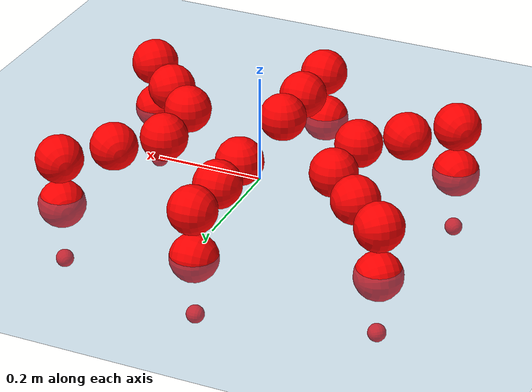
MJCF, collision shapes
<mujoco model="Golem">
  <compiler angle="radian" assetdir="assets" balanceinertia="true" inertiafromgeom="false"/>

  <option timestep="0.005" density="1.2" viscosity="2e-05"/>

  <size nkey="1"/>

  <visual>
    <quality shadowsize="8192"/>
    <map shadowclip="0.5"/>
  </visual>

  <default>
    <default class="/">
      <joint armature="0.01" damping="0.01" frictionloss="0.01"/>
      <geom contype="0" conaffinity="0" group="1" solref="-1000 -80"/>
      <site size="0.01 0.005 0.005" group="5"/>
      <general forcelimited="true" biastype="affine" gainprm="25" biasprm="0 -25 -0.5"/>
      <default class="visual">
        <geom type="mesh" group="2"/>
      </default>
      <default class="collision">
        <geom group="3"/>
      </default>
      <default class="foot">
        <geom size="0.01 0 0" condim="6" group="4" priority="1" solimp="0.015 1 0.01"/>
      </default>
      <default class="reward_collision_sphere">
        <geom group="5" rgba="1 0 0 1"/>
      </default>
    </default>
  </default>

  <asset>
    <texture type="skybox" colorspace="auto" name="//unnamed_texture_0" builtin="gradient" rgb1="0.95 0.95 0.95" rgb2="0.95 0.95 0.95" width="100" height="600"/>
    <texture type="2d" colorspace="auto" name="texplane" builtin="checker" rgb1="0.345 0.575 0.748" rgb2="0.345 0.575 0.748" markrgb="1 1 1" width="512" height="512"/>
    <material name="MatPlane" class="/" texture="texplane" texuniform="true" texrepeat="2 2" specular="0.9"/>
    <mesh name="body" class="/" file="body.stl" scale="0.001 0.001 0.001"/>
    <mesh name="coxa" class="/" file="coxa.stl" scale="0.001 0.001 0.001"/>
    <mesh name="femur" class="/" file="femur.stl" scale="0.001 0.001 0.001"/>
    <mesh name="tibia" class="/" file="tibia.stl" scale="0.001 0.001 0.001"/>
    <mesh name="tarsus" class="/" file="tarsus.stl" scale="0.001 0.001 0.001"/>
  </asset>

  <worldbody>
    <geom name="floor" class="/" size="100 100 0.125" type="plane" group="0" material="MatPlane"/>
    <light name="toplight_shadow" class="/" pos="0 0 5" dir="0.0990148 0.0990148 -0.990148" type="directional" ambient="0.04 0.04 0.04" diffuse="0.55 0.55 0.55" specular="0.12 0.12 0.12"/>
    <light name="toplight_fill" class="/" pos="0 0 5" dir="0.0990148 0.0990148 -0.990148" type="directional" castshadow="false" ambient="0.04 0.04 0.04" diffuse="0.3 0.3 0.3" specular="0.08 0.08 0.08"/>
    <body name="trunk" pos="-5.25002e-05 -0.00226526 -0.000385319" quat="1 0.000386036 -0.000415569 -0.000133752">
      <inertial pos="0.0024497 -0.00233669 -0.00179861" quat="0.999923 -0.0118853 0.000829684 -0.00336055" mass="4.85385" diaginertia="0.0126181 0.00680794 0.0351157"/>
      <joint name="//unnamed_joint_0" type="free"/>
      <geom name="//unnamed_geom_1" class="/" pos="0 0 0.0822961" quat="1 0 0 0" type="mesh" rgba="0.9 0.9 0.9 1" mesh="body"/>
      <site name="imu" class="/" pos="0.12468 -0.00739966 0.108426" size="0.0109267"/>
      <camera name="track" class="/" pos="0 -1.86717 0" quat="0.707107 0.707107 0 0" mode="trackcom"/>
      <camera name="ego_camera" class="/" pos="0.13761 0 0.128588" quat="-0.5 -0.5 0.5 0.5"/>
      <body name="coxa_RR" pos="-0.188423 -0.0783977 0.0812404" quat="0.381734 -0.00113535 0.00155651 -0.92427">
        <inertial pos="-0.000624454 0.00248067 -0.000986458" quat="0.999951 -0.00739383 -0.00490499 0.00430222" mass="0.246447" diaginertia="0.0124487 0.00665455 0.0319711"/>
        <joint name="coxa_joint_RR" class="/" pos="0 0 0" axis="-0.00455683 0.00564395 -0.999974" stiffness="0.00762587" range="-3.09836 3.08798" armature="0.0122974" damping="0" frictionloss="0.0121792"/>
        <geom name="//unnamed_geom_2" class="/" type="mesh" rgba="0.2 0.2 0.2 1" mesh="coxa"/>
        <geom name="//unnamed_geom_3" class="reward_collision_sphere" size="0.0437067" pos="-0.0317562 0 0"/>
        <body name="femur_RR" pos="0.0624564 -0.00146133 -0.00253135" quat="0.500786 -0.499995 0.500495 0.498721">
          <inertial pos="1.55431e-05 -0.00374801 0.00127169" quat="0.999996 0.00149131 -0.00215045 -0.000504628" mass="0.27099" diaginertia="0.0137829 0.00711495 0.0359418"/>
          <joint name="femur_joint_RR" class="/" pos="0 0 0" axis="-0.00675837 -0.00455266 -0.999967" range="-3.09023 3.08971" armature="0.0101006" damping="0.0213062" frictionloss="0.0110869"/>
          <geom name="//unnamed_geom_4" class="/" type="mesh" rgba="0.9 0.9 0.9 1" mesh="femur"/>
          <geom name="//unnamed_geom_5" class="reward_collision_sphere" size="0.0437067"/>
          <body name="tibia_RR" pos="0.000146961 -0.0994232 0.0015311" quat="9.73794e-05 1 8.04514e-05 1.27421e-05">
            <inertial pos="0.00122657 -0.00296944 0.00232475" quat="0.999999 -1.77822e-05 0.0012576 0.000182345" mass="0.261852" diaginertia="0.0132637 0.00716254 0.0347544"/>
            <joint name="tibia_joint_RR" class="/" pos="0 0 0" axis="-0.00273023 0.0122494 0.999921" stiffness="0.00831091" range="-3.19928 3.18655" armature="0.0102756" damping="0.0234209" frictionloss="0.00840712"/>
            <geom name="//unnamed_geom_6" class="/" type="mesh" rgba="0.2 0.2 0.2 1" mesh="tibia"/>
            <geom name="//unnamed_geom_7" class="reward_collision_sphere" size="0.0437067"/>
            <body name="tarsus_RR" pos="0.0925399 -0.000735128 0.00343439" quat="1 -6.38063e-05 -0.000191641 0.000603276">
              <inertial pos="0.0657114 -0.00202029 -0.000108352" quat="0.495923 0.500796 0.497161 0.506058" mass="0.267788" diaginertia="0.0140455 0.00705116 0.0340601"/>
              <joint name="tarsus_joint_RR" class="/" pos="0 0 0" axis="-0.0022118 0.0003499 0.999997" stiffness="0.00533908" range="-3.16261 3.11368" armature="0.00961518" damping="0.00172671" frictionloss="0.0119686"/>
              <geom name="//unnamed_geom_8" class="/" type="mesh" rgba="0.9 0.9 0.9 1" mesh="tarsus"/>
              <geom name="foot_1" class="foot" size="0.0115946" pos="0.118556 0 0" quat="0 -0.707107 0 0.707107"/>
              <geom name="//unnamed_geom_10" class="reward_collision_sphere" size="0.0437067"/>
              <geom name="//unnamed_geom_11" class="reward_collision_sphere" size="0.01639" pos="0.113793 0 0"/>
              <site name="foot_1" class="foot" pos="0.118556 0 0" quat="0 -0.707107 0 0.707107" size="0.0109267"/>
            </body>
          </body>
        </body>
      </body>
      <body name="coxa_RM" pos="-0.00427544 -0.12099 0.0836461" quat="0.707579 0.000169613 0.000981108 -0.706633">
        <inertial pos="0.00134013 -0.000133371 0.00163204" quat="0.999801 -0.0123019 0.0156915 -3.77605e-05" mass="0.242687" diaginertia="0.0127159 0.00646404 0.0330415"/>
        <joint name="coxa_joint_RM" class="/" pos="0 0 0" axis="-0.0094924 0.0150895 -0.999841" range="-3.14919 3.11194" armature="0.00951261" damping="0.0285404" frictionloss="0.0110823"/>
        <geom name="//unnamed_geom_12" class="/" type="mesh" rgba="0.2 0.2 0.2 1" mesh="coxa"/>
        <geom name="//unnamed_geom_13" class="reward_collision_sphere" size="0.0437067" pos="-0.0317562 0 0"/>
        <body name="femur_RM" pos="0.0667245 0.0023301 -0.000528621" quat="0.500362 -0.500309 0.499221 0.500107">
          <inertial pos="-0.000305439 -0.000308324 -0.000986599" quat="0.999937 -0.0103019 -0.00222821 -0.00388528" mass="0.262561" diaginertia="0.0134502 0.00703758 0.0341379"/>
          <joint name="femur_joint_RM" class="/" pos="0 0 0" axis="-0.00110451 -0.000483767 -0.999999" stiffness="0.0101734" range="-3.16404 3.16975" armature="0.0107759" damping="0.014545" frictionloss="0.00970882"/>
          <geom name="//unnamed_geom_14" class="/" type="mesh" rgba="0.9 0.9 0.9 1" mesh="femur"/>
          <geom name="//unnamed_geom_15" class="reward_collision_sphere" size="0.0437067"/>
          <body name="tibia_RM" pos="-0.000553375 -0.100654 -0.000795683" quat="-0.000521779 1 -0.000803173 -0.000186534">
            <inertial pos="0.00113162 0.000189957 -0.000759273" quat="0.999925 0.00952059 0.006031 0.00486464" mass="0.251057" diaginertia="0.0132623 0.00715385 0.0344242"/>
            <joint name="tibia_joint_RM" class="/" pos="0 0 0" axis="-0.0122849 -0.00728193 0.999898" range="-3.09848 3.13974" armature="0.0126628" damping="0.0179113" frictionloss="0.00936873"/>
            <geom name="//unnamed_geom_16" class="/" type="mesh" rgba="0.2 0.2 0.2 1" mesh="tibia"/>
            <geom name="//unnamed_geom_17" class="reward_collision_sphere" size="0.0437067"/>
            <body name="tarsus_RM" pos="0.0979054 0.00337271 0.00279256" quat="1 3.27335e-06 -2.84921e-06 -7.72952e-05">
              <inertial pos="0.0630275 -0.00208026 -0.000265647" quat="0.499282 0.498694 0.501678 0.50034" mass="0.249705" diaginertia="0.0127173 0.00684285 0.0341701"/>
              <joint name="tarsus_joint_RM" class="/" pos="0 0 0" axis="-0.00649847 -0.00843908 0.999943" range="-3.09335 3.08895" armature="0.00995089" damping="0" frictionloss="0.0123259"/>
              <geom name="//unnamed_geom_18" class="/" type="mesh" rgba="0.9 0.9 0.9 1" mesh="tarsus"/>
              <geom name="foot_2" class="foot" size="0.0106477" pos="0.118556 0 0" quat="0 -0.707107 0 0.707107"/>
              <geom name="//unnamed_geom_20" class="reward_collision_sphere" size="0.0437067"/>
              <geom name="//unnamed_geom_21" class="reward_collision_sphere" size="0.01639" pos="0.113793 0 0"/>
              <site name="foot_2" class="foot" pos="0.118556 0 0" quat="0 -0.707107 0 0.707107" size="0.0109267"/>
            </body>
          </body>
        </body>
      </body>
      <body name="coxa_RF" pos="0.190855 -0.0732646 0.0816118" quat="0.923782 0.000591438 -0.000292789 -0.382918">
        <inertial pos="0.00312357 0.00136697 0.000764508" quat="0.999996 -0.000366729 -0.00190569 0.00223886" mass="0.25645" diaginertia="0.0126128 0.00681723 0.0321332"/>
        <joint name="coxa_joint_RF" class="/" pos="0 0 0" axis="-0.0132535 0.00638319 -0.999892" stiffness="0.00945775" range="-3.11545 3.12857" armature="0.0097699" damping="0" frictionloss="0.00962651"/>
        <geom name="//unnamed_geom_22" class="/" type="mesh" rgba="0.2 0.2 0.2 1" mesh="coxa"/>
        <geom name="//unnamed_geom_23" class="reward_collision_sphere" size="0.0437067" pos="-0.0317562 0 0"/>
        <body name="femur_RF" pos="0.0600209 -0.000302913 0.000956685" quat="0.500201 -0.499474 0.500183 0.500141">
          <inertial pos="0.00214527 -0.000500469 -0.00247239" quat="0.999981 0.00179202 0.0020547 -0.0054885" mass="0.257372" diaginertia="0.0131148 0.00688177 0.0348217"/>
          <joint name="femur_joint_RF" class="/" pos="0 0 0" axis="0.00623287 0.0108657 -0.999922" range="-3.10376 3.12617" armature="0.0113953" damping="0.0121658" frictionloss="0.0119135"/>
          <geom name="//unnamed_geom_24" class="/" type="mesh" rgba="0.9 0.9 0.9 1" mesh="femur"/>
          <geom name="//unnamed_geom_25" class="reward_collision_sphere" size="0.0437067"/>
          <body name="tibia_RF" pos="-0.00506704 -0.102891 -0.0014686" quat="-0.000433638 0.999999 0.000603447 -0.00083908">
            <inertial pos="0.000660378 0.00260148 0.00106104" quat="0.999937 0.00785051 -0.00779075 0.0016774" mass="0.282205" diaginertia="0.0136222 0.00725462 0.0354247"/>
            <joint name="tibia_joint_RF" class="/" pos="0 0 0" axis="-0.0113579 -0.00336811 0.99993" stiffness="0.0293559" range="-3.17105 3.145" armature="0.0111409" damping="0.0384557" frictionloss="0.010476"/>
            <geom name="//unnamed_geom_26" class="/" type="mesh" rgba="0.2 0.2 0.2 1" mesh="tibia"/>
            <geom name="//unnamed_geom_27" class="reward_collision_sphere" size="0.0437067"/>
            <body name="tarsus_RF" pos="0.0943007 -0.00252828 0.00354588" quat="1 -1.24416e-06 6.15002e-07 -2.46641e-06">
              <inertial pos="0.0666843 0.0023408 -0.00174462" quat="0.509363 0.500442 0.495714 0.494343" mass="0.257527" diaginertia="0.0127143 0.00706529 0.0353221"/>
              <joint name="tarsus_joint_RF" class="/" pos="0 0 0" axis="-0.0164216 -0.0115499 0.999798" stiffness="0.00724166" range="-3.18157 3.08758" armature="0.0097228" damping="0.00909121" frictionloss="0.0115101"/>
              <geom name="//unnamed_geom_28" class="/" type="mesh" rgba="0.9 0.9 0.9 1" mesh="tarsus"/>
              <geom name="foot_3" class="foot" size="0.0115881" pos="0.118556 0 0" quat="0 -0.707107 0 0.707107"/>
              <geom name="//unnamed_geom_30" class="reward_collision_sphere" size="0.0437067"/>
              <geom name="//unnamed_geom_31" class="reward_collision_sphere" size="0.01639" pos="0.113793 0 0"/>
              <site name="foot_3" class="foot" pos="0.118556 0 0" quat="0 -0.707107 0 0.707107" size="0.0109267"/>
            </body>
          </body>
        </body>
      </body>
      <body name="coxa_LR" pos="-0.187402 0.0799301 0.0795072" quat="0.382592 -0.000459669 0.000744725 0.923917">
        <inertial pos="-0.00143577 -0.00134585 0.00181042" quat="0.999923 0.00483914 0.00990608 0.00565454" mass="0.266329" diaginertia="0.0132615 0.00729103 0.036071"/>
        <joint name="coxa_joint_LR" class="/" pos="0 0 0" axis="-0.000735715 -0.00277106 -0.999996" stiffness="0.00110205" range="-3.17583 3.08918" armature="0.0114393" damping="0.0121664" frictionloss="0.0107823"/>
        <geom name="//unnamed_geom_32" class="/" type="mesh" rgba="0.2 0.2 0.2 1" mesh="coxa"/>
        <geom name="//unnamed_geom_33" class="reward_collision_sphere" size="0.0437067" pos="-0.0317562 0 0"/>
        <body name="femur_LR" pos="0.0645912 0.000233336 -0.00306451" quat="0.500872 -0.499868 0.499746 0.499513">
          <inertial pos="0.00157423 -0.000268931 0.0023485" quat="0.99987 0.00941596 -0.00979649 -0.00866823" mass="0.246892" diaginertia="0.0127619 0.00664766 0.0338739"/>
          <joint name="femur_joint_LR" class="/" pos="0 0 0" axis="-0.022984 -0.00972115 0.999689" range="-3.17266 3.18323" armature="0.00863007" damping="0.0149939" frictionloss="0.0107356"/>
          <geom name="//unnamed_geom_34" class="/" type="mesh" rgba="0.9 0.9 0.9 1" mesh="femur"/>
          <geom name="//unnamed_geom_35" class="reward_collision_sphere" size="0.0437067"/>
          <body name="tibia_LR" pos="-0.00200735 -0.100454 0.000171266" quat="-0.00113418 0.999999 0.000187471 -0.00041096">
            <inertial pos="-0.00132541 0.00249028 -0.0008654" quat="1 -6.88762e-05 -0.000109931 0.000110259" mass="0.261542" diaginertia="0.0141364 0.00748259 0.0353387"/>
            <joint name="tibia_joint_LR" class="/" pos="0 0 0" axis="0.00190973 -0.000576713 -0.999998" range="-3.20475 3.13185" armature="0.0115408" damping="0.00596076" frictionloss="0.0109317"/>
            <geom name="//unnamed_geom_36" class="/" type="mesh" rgba="0.2 0.2 0.2 1" mesh="tibia"/>
            <geom name="//unnamed_geom_37" class="reward_collision_sphere" size="0.0437067"/>
            <body name="tarsus_LR" pos="0.0964137 -0.000651006 -0.00173223" quat="1 0.000188766 0.000137531 -4.81705e-06">
              <inertial pos="0.0637344 0.00200445 0.00254869" quat="0.499838 0.501517 0.500129 0.498511" mass="0.261278" diaginertia="0.0129223 0.00648573 0.0346269"/>
              <joint name="tarsus_joint_LR" class="/" pos="0 0 0" axis="-0.00625747 0.001134 -0.99998" stiffness="0.00473011" range="-3.19126 3.15365" armature="0.0109921" damping="0.0117905" frictionloss="0.0104697"/>
              <geom name="//unnamed_geom_38" class="/" type="mesh" rgba="0.9 0.9 0.9 1" mesh="tarsus"/>
              <geom name="foot_4" class="foot" size="0.0113041" pos="0.118556 0 0" quat="0.707107 0 -0.707107 0"/>
              <geom name="//unnamed_geom_40" class="reward_collision_sphere" size="0.0437067"/>
              <geom name="//unnamed_geom_41" class="reward_collision_sphere" size="0.01639" pos="0.113793 0 0"/>
              <site name="foot_4" class="foot" pos="0.118556 0 0" quat="0.707107 0 -0.707107 0" size="0.0109267"/>
            </body>
          </body>
        </body>
      </body>
      <body name="coxa_LM" pos="-0.00115704 0.12376 0.0824527" quat="0.706764 0.0011617 -0.000737341 0.707448">
        <inertial pos="0.000358171 4.61538e-05 0.002978" quat="0.999929 -0.000272627 -0.00376838 0.0113421" mass="0.262103" diaginertia="0.0140209 0.00739212 0.0365717"/>
        <joint name="coxa_joint_LM" class="/" pos="0 0 0" axis="0.00550034 -0.00166525 -0.999983" stiffness="0.00763457" range="-3.18795 3.13534" armature="0.0123491" damping="0.0180222" frictionloss="0.0107624"/>
        <geom name="//unnamed_geom_42" class="/" type="mesh" rgba="0.2 0.2 0.2 1" mesh="coxa"/>
        <geom name="//unnamed_geom_43" class="reward_collision_sphere" size="0.0437067" pos="-0.0317562 0 0"/>
        <body name="femur_LM" pos="0.0612012 0.00098057 0.0013181" quat="0.49972 -0.499622 0.500336 0.500322">
          <inertial pos="0.000413629 -0.000716537 0.0042938" quat="0.999996 -0.00110123 -0.000665432 -0.00241258" mass="0.26258" diaginertia="0.0130366 0.00710164 0.0344098"/>
          <joint name="femur_joint_LM" class="/" pos="0 0 0" axis="-0.00309392 -0.00355303 0.999989" stiffness="0.00834976" range="-3.08839 3.21791" armature="0.0105598" damping="0.0248347" frictionloss="0.0117501"/>
          <geom name="//unnamed_geom_44" class="/" type="mesh" rgba="0.9 0.9 0.9 1" mesh="femur"/>
          <geom name="//unnamed_geom_45" class="reward_collision_sphere" size="0.0437067"/>
          <body name="tibia_LM" pos="-0.00151827 -0.0993354 0.000314869" quat="0.000262724 1 0.00041538 0.000730195">
            <inertial pos="0.00191416 -0.000432551 0.000758202" quat="0.999934 -0.00104326 0.00802013 -0.00818633" mass="0.279889" diaginertia="0.0141249 0.00758317 0.0375651"/>
            <joint name="tibia_joint_LM" class="/" pos="0 0 0" axis="0.00713747 -0.00116244 -0.999974" stiffness="0.0115576" range="-3.16483 3.11088" armature="0.00817704" damping="0.03042" frictionloss="0.0102935"/>
            <geom name="//unnamed_geom_46" class="/" type="mesh" rgba="0.2 0.2 0.2 1" mesh="tibia"/>
            <geom name="//unnamed_geom_47" class="reward_collision_sphere" size="0.0437067"/>
            <body name="tarsus_LM" pos="0.0936477 -0.00115426 -0.000757356" quat="1 -0.000118187 0.000168906 -0.000226831">
              <inertial pos="0.0615755 0.00102049 -0.000694421" quat="0.499057 0.497704 0.505999 0.49719" mass="0.277169" diaginertia="0.0135977 0.00795527 0.0360814"/>
              <joint name="tarsus_joint_LM" class="/" pos="0 0 0" axis="0.00419451 -0.00305928 -0.999987" range="-3.15012 3.1403" armature="0.00965398" damping="0" frictionloss="0.00883993"/>
              <geom name="//unnamed_geom_48" class="/" type="mesh" rgba="0.9 0.9 0.9 1" mesh="tarsus"/>
              <geom name="foot_5" class="foot" size="0.0113761" pos="0.118556 0 0" quat="0.707107 0 -0.707107 0"/>
              <geom name="//unnamed_geom_50" class="reward_collision_sphere" size="0.0437067"/>
              <geom name="//unnamed_geom_51" class="reward_collision_sphere" size="0.01639" pos="0.113793 0 0"/>
              <site name="foot_5" class="foot" pos="0.118556 0 0" quat="0.707107 0 -0.707107 0" size="0.0109267"/>
            </body>
          </body>
        </body>
      </body>
      <body name="coxa_LF" pos="0.185653 0.0803803 0.0776397" quat="0.924177 -3.00423e-05 0.000429951 0.381964">
        <inertial pos="0.00297853 0.00448489 0.000146906" quat="0.999919 -0.00835996 0.00851398 0.00441408" mass="0.265586" diaginertia="0.0134675 0.00756275 0.0352641"/>
        <joint name="coxa_joint_LF" class="/" pos="0 0 0" axis="-0.00389471 -0.014763 -0.999883" range="-3.1608 3.1433" armature="0.0123727" damping="0.0235722" frictionloss="0.0112697"/>
        <geom name="//unnamed_geom_52" class="/" type="mesh" rgba="0.2 0.2 0.2 1" mesh="coxa"/>
        <geom name="//unnamed_geom_53" class="reward_collision_sphere" size="0.0437067" pos="-0.0317562 0 0"/>
        <body name="femur_LF" pos="0.0614384 -0.00236501 -0.00227791" quat="0.500091 -0.499833 0.50024 0.499836">
          <inertial pos="-0.000480904 -0.00102295 0.00244845" quat="0.999998 0.00131355 0.00162057 0.000328629" mass="0.275813" diaginertia="0.014198 0.00729924 0.0359252"/>
          <joint name="femur_joint_LF" class="/" pos="0 0 0" axis="0.00539103 -0.0114 0.99992" stiffness="0.000700231" range="-3.17312 3.12186" armature="0.0123138" damping="0.00348209" frictionloss="0.011123"/>
          <geom name="//unnamed_geom_54" class="/" type="mesh" rgba="0.9 0.9 0.9 1" mesh="femur"/>
          <geom name="//unnamed_geom_55" class="reward_collision_sphere" size="0.0437067"/>
          <body name="tibia_LF" pos="0.00385643 -0.101756 0.00341076" quat="-0.000415488 1 -0.000206347 -0.000468139">
            <inertial pos="0.000680398 -0.00230364 -0.00135349" quat="0.999987 -0.00497519 -0.00116023 7.86711e-05" mass="0.254321" diaginertia="0.0128535 0.00685233 0.033668"/>
            <joint name="tibia_joint_LF" class="/" pos="0 0 0" axis="0.000804437 0.000237145 -1" stiffness="0.0263062" range="-3.11987 3.15782" armature="0.00968848" damping="0.023921" frictionloss="0.0123335"/>
            <geom name="//unnamed_geom_56" class="/" type="mesh" rgba="0.2 0.2 0.2 1" mesh="tibia"/>
            <geom name="//unnamed_geom_57" class="reward_collision_sphere" size="0.0437067"/>
            <body name="tarsus_LF" pos="0.091603 -0.00094557 0.000593257" quat="1 0.000305891 -1.56595e-05 -1.5884e-05">
              <inertial pos="0.0681203 0.00319721 -0.00273839" quat="0.480216 0.505999 0.511804 0.501412" mass="0.255573" diaginertia="0.0135358 0.00716771 0.0346306"/>
              <joint name="tarsus_joint_LF" class="/" pos="0 0 0" axis="-0.0223812 0.0125515 -0.999671" stiffness="0.0204546" range="-3.10814 3.14338" armature="0.0109691" damping="0.0170578" frictionloss="0.00996739"/>
              <geom name="//unnamed_geom_58" class="/" type="mesh" rgba="0.9 0.9 0.9 1" mesh="tarsus"/>
              <geom name="foot_6" class="foot" size="0.0106587" pos="0.118556 0 0" quat="0.707107 0 -0.707107 0"/>
              <geom name="//unnamed_geom_60" class="reward_collision_sphere" size="0.0437067"/>
              <geom name="//unnamed_geom_61" class="reward_collision_sphere" size="0.01639" pos="0.113793 0 0"/>
              <site name="foot_6" class="foot" pos="0.118556 0 0" quat="0.707107 0 -0.707107 0" size="0.0109267"/>
            </body>
          </body>
        </body>
      </body>
    </body>
  </worldbody>

  <contact>
    <pair class="/" geom1="floor" geom2="foot_1" name="//unnamed_contact_0"/>
    <pair class="/" geom1="floor" geom2="foot_2" name="//unnamed_contact_1"/>
    <pair class="/" geom1="floor" geom2="foot_3" name="//unnamed_contact_2"/>
    <pair class="/" geom1="floor" geom2="foot_4" name="//unnamed_contact_3"/>
    <pair class="/" geom1="floor" geom2="foot_5" name="//unnamed_contact_4"/>
    <pair class="/" geom1="floor" geom2="foot_6" name="//unnamed_contact_5"/>
  </contact>

  <actuator>
    <general name="coxa_joint_RR" class="/" joint="coxa_joint_RR" forcerange="-7.92109 7.92109" gainprm="26.7634" biasprm="0 -26.7634 -0.583644"/>
    <general name="femur_joint_RR" class="/" joint="femur_joint_RR" forcerange="-8.75015 8.75015" gainprm="26.7634" biasprm="0 -26.7634 -0.583644"/>
    <general name="tibia_joint_RR" class="/" joint="tibia_joint_RR" forcerange="-8.21996 8.21996" gainprm="26.7634" biasprm="0 -26.7634 -0.583644"/>
    <general name="tarsus_joint_RR" class="/" joint="tarsus_joint_RR" forcerange="-7.62999 7.62999" gainprm="26.7634" biasprm="0 -26.7634 -0.583644"/>
    <general name="coxa_joint_RM" class="/" joint="coxa_joint_RM" forcerange="-7.32195 7.32195" gainprm="26.7634" biasprm="0 -26.7634 -0.583644"/>
    <general name="femur_joint_RM" class="/" joint="femur_joint_RM" forcerange="-7.60305 7.60305" gainprm="26.7634" biasprm="0 -26.7634 -0.583644"/>
    <general name="tibia_joint_RM" class="/" joint="tibia_joint_RM" forcerange="-8.73955 8.73955" gainprm="26.7634" biasprm="0 -26.7634 -0.583644"/>
    <general name="tarsus_joint_RM" class="/" joint="tarsus_joint_RM" forcerange="-8.57798 8.57798" gainprm="26.7634" biasprm="0 -26.7634 -0.583644"/>
    <general name="coxa_joint_RF" class="/" joint="coxa_joint_RF" forcerange="-8.31538 8.31538" gainprm="26.7634" biasprm="0 -26.7634 -0.583644"/>
    <general name="femur_joint_RF" class="/" joint="femur_joint_RF" forcerange="-8.58521 8.58521" gainprm="26.7634" biasprm="0 -26.7634 -0.583644"/>
    <general name="tibia_joint_RF" class="/" joint="tibia_joint_RF" forcerange="-8.69037 8.69037" gainprm="26.7634" biasprm="0 -26.7634 -0.583644"/>
    <general name="tarsus_joint_RF" class="/" joint="tarsus_joint_RF" forcerange="-8.6487 8.6487" gainprm="26.7634" biasprm="0 -26.7634 -0.583644"/>
    <general name="coxa_joint_LR" class="/" joint="coxa_joint_LR" forcerange="-7.72258 7.72258" gainprm="26.7634" biasprm="0 -26.7634 -0.583644"/>
    <general name="femur_joint_LR" class="/" joint="femur_joint_LR" forcerange="-7.85023 7.85023" gainprm="26.7634" biasprm="0 -26.7634 -0.583644"/>
    <general name="tibia_joint_LR" class="/" joint="tibia_joint_LR" forcerange="-7.53708 7.53708" gainprm="26.7634" biasprm="0 -26.7634 -0.583644"/>
    <general name="tarsus_joint_LR" class="/" joint="tarsus_joint_LR" forcerange="-8.09931 8.09931" gainprm="26.7634" biasprm="0 -26.7634 -0.583644"/>
    <general name="coxa_joint_LM" class="/" joint="coxa_joint_LM" forcerange="-7.22518 7.22518" gainprm="26.7634" biasprm="0 -26.7634 -0.583644"/>
    <general name="femur_joint_LM" class="/" joint="femur_joint_LM" forcerange="-7.25422 7.25422" gainprm="26.7634" biasprm="0 -26.7634 -0.583644"/>
    <general name="tibia_joint_LM" class="/" joint="tibia_joint_LM" forcerange="-8.02754 8.02754" gainprm="26.7634" biasprm="0 -26.7634 -0.583644"/>
    <general name="tarsus_joint_LM" class="/" joint="tarsus_joint_LM" forcerange="-8.60805 8.60805" gainprm="26.7634" biasprm="0 -26.7634 -0.583644"/>
    <general name="coxa_joint_LF" class="/" joint="coxa_joint_LF" forcerange="-7.57144 7.57144" gainprm="26.7634" biasprm="0 -26.7634 -0.583644"/>
    <general name="femur_joint_LF" class="/" joint="femur_joint_LF" forcerange="-7.98307 7.98307" gainprm="26.7634" biasprm="0 -26.7634 -0.583644"/>
    <general name="tibia_joint_LF" class="/" joint="tibia_joint_LF" forcerange="-7.71311 7.71311" gainprm="26.7634" biasprm="0 -26.7634 -0.583644"/>
    <general name="tarsus_joint_LF" class="/" joint="tarsus_joint_LF" forcerange="-7.80805 7.80805" gainprm="26.7634" biasprm="0 -26.7634 -0.583644"/>
  </actuator>

  <sensor>
    <gyro site="imu" name="imu_angular_velocity"/>
    <velocimeter site="imu" name="imu_linear_velocity"/>
    <framelinvel objtype="site" objname="foot_1" name="foot_1_global_linear_velocity"/>
    <framelinvel objtype="site" objname="foot_2" name="foot_2_global_linear_velocity"/>
    <framelinvel objtype="site" objname="foot_3" name="foot_3_global_linear_velocity"/>
    <framelinvel objtype="site" objname="foot_4" name="foot_4_global_linear_velocity"/>
    <framelinvel objtype="site" objname="foot_5" name="foot_5_global_linear_velocity"/>
    <framelinvel objtype="site" objname="foot_6" name="foot_6_global_linear_velocity"/>
  </sensor>

  <keyframe>
    <key name="home" qpos="0 0 0.1457 1 0 0 0 0 0 0 0 0 0 0 0 0 0 0 0 0 0 0 0 0 0 0 0 0 0 0 0"/>
  </keyframe>
</mujoco>
